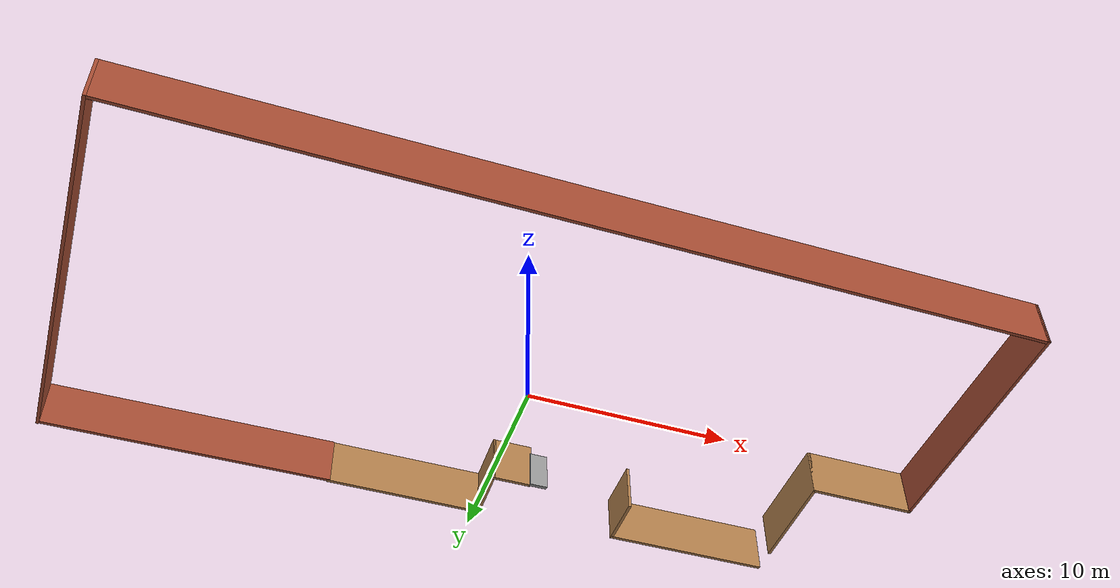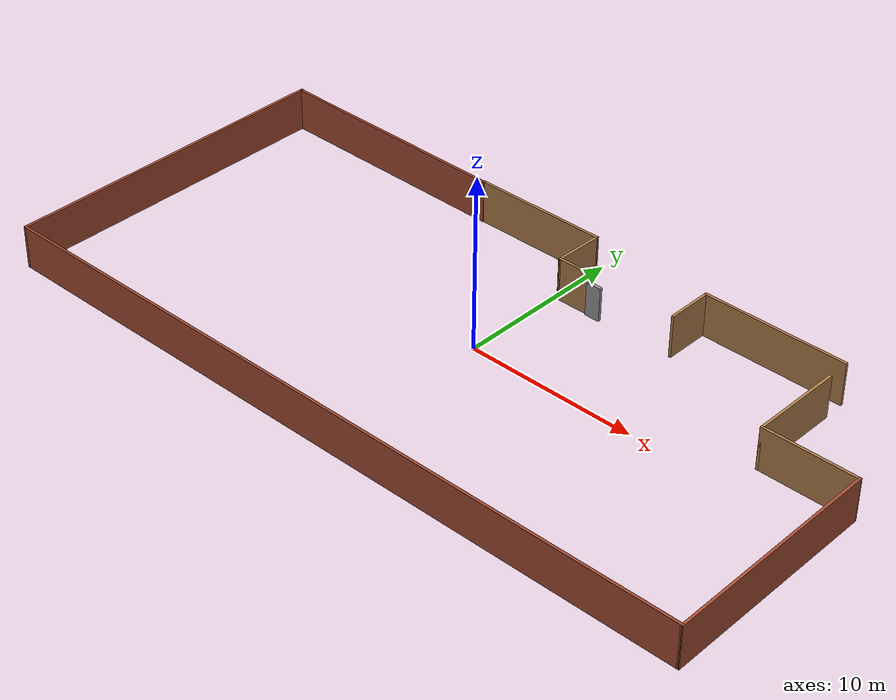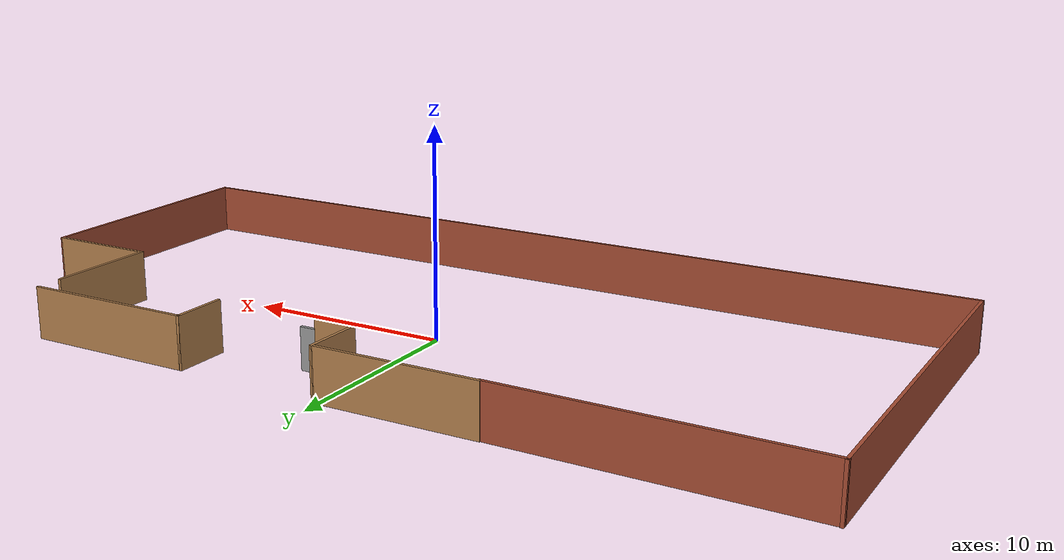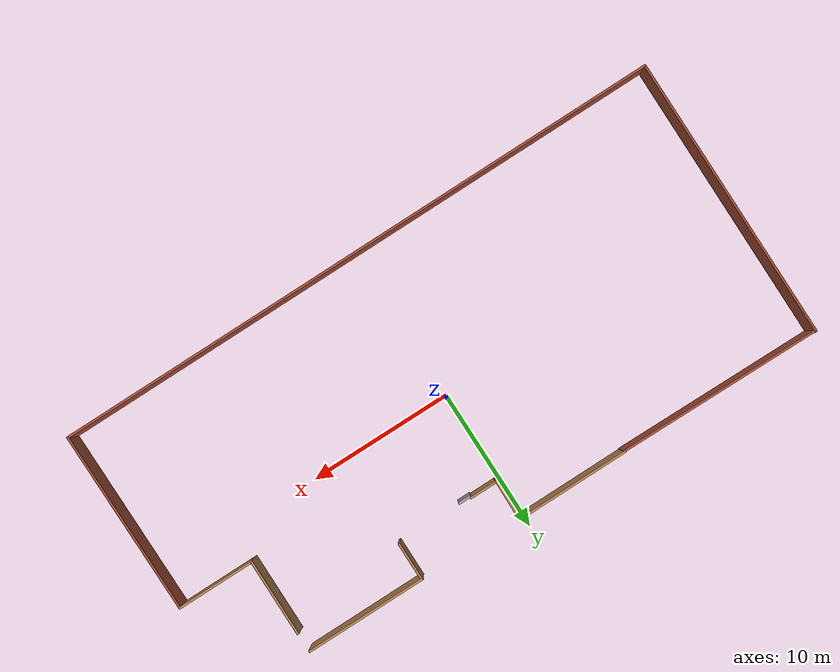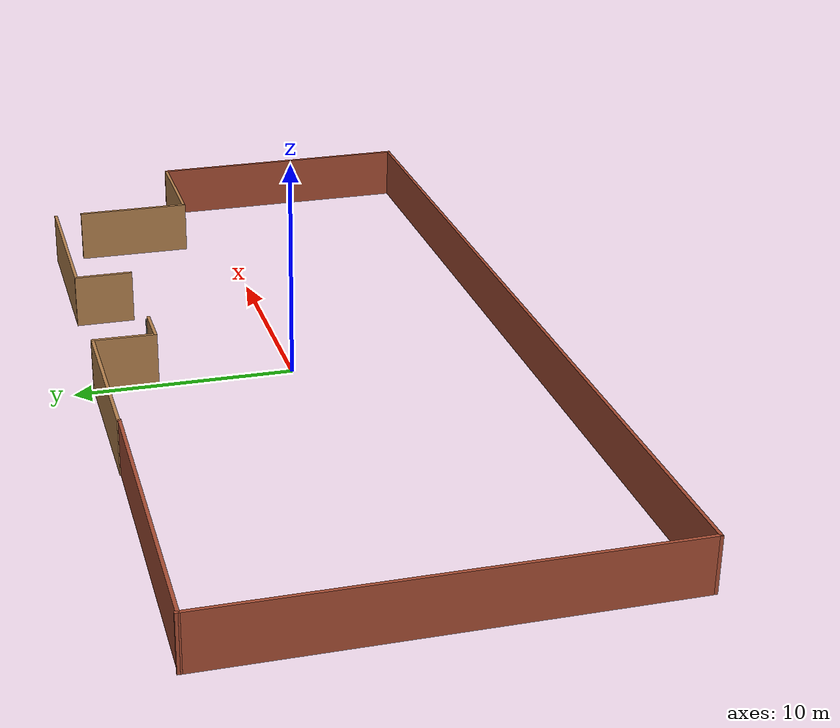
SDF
<?xml version='1.0'?>
<sdf version='1.7'>
  <model name='MKS_1'>
    <pose>-0.211875 -0.784616 0 0 -0 0</pose>
    <link name='Door_0'>
      <collision name='Door_0_Collision'>
        <geometry>
          <box>
            <size>0.9 0.17 2</size>
          </box>
        </geometry>
        <pose>0 0 1 0 -0 0</pose>
      </collision>
      <visual name='Door_0_Visual'>
        <pose>0 0 1 0 -0 0</pose>
        <geometry>
          <box>
            <size>0.9 0.17 2</size>
          </box>
        </geometry>
        <material>
          <script>
            <uri>file://media/materials/scripts/gazebo.material</uri>
            <name>Gazebo/Grey</name>
          </script>
        </material>
      </visual>
      <pose>2.75193 6.92489 0 0 -0 0</pose>
    </link>
    <link name='Wall_13'>
      <collision name='Wall_13_Collision'>
        <geometry>
          <box>
            <size>8.00014 0.15 2.5</size>
          </box>
        </geometry>
        <pose>0 0 1.25 0 -0 0</pose>
      </collision>
      <visual name='Wall_13_Visual'>
        <pose>0 0 1.25 0 -0 0</pose>
        <geometry>
          <box>
            <size>8.00014 0.15 2.5</size>
          </box>
        </geometry>
        <material>
          <script>
            <uri>file://media/materials/scripts/gazebo.material</uri>
            <name>Gazebo/Wood</name>
          </script>
          <ambient>1 1 1 1</ambient>
        </material>
        <meta>
          <layer>0</layer>
        </meta>
      </visual>
      <pose>-3.44481 9.79409 0 0 -0 0</pose>
    </link>
    <link name='Wall_14'>
      <collision name='Wall_14_Collision'>
        <geometry>
          <box>
            <size>2.9474 0.15 2.5</size>
          </box>
        </geometry>
        <pose>0 0 1.25 0 -0 0</pose>
      </collision>
      <visual name='Wall_14_Visual'>
        <pose>0 0 1.25 0 -0 0</pose>
        <geometry>
          <box>
            <size>2.9474 0.15 2.5</size>
          </box>
        </geometry>
        <material>
          <script>
            <uri>file://media/materials/scripts/gazebo.material</uri>
            <name>Gazebo/Wood</name>
          </script>
          <ambient>1 1 1 1</ambient>
        </material>
        <meta>
          <layer>0</layer>
        </meta>
      </visual>
      <pose>0.453887 8.39539 0 0 -0 -1.5896</pose>
    </link>
    <link name='Wall_16'>
      <collision name='Wall_16_Collision'>
        <geometry>
          <box>
            <size>2 0.15 2.5</size>
          </box>
        </geometry>
        <pose>0 0 1.25 0 -0 0</pose>
      </collision>
      <visual name='Wall_16_Visual'>
        <pose>0 0 1.25 0 -0 0</pose>
        <geometry>
          <box>
            <size>2 0.15 2.5</size>
          </box>
        </geometry>
        <material>
          <script>
            <uri>file://media/materials/scripts/gazebo.material</uri>
            <name>Gazebo/Wood</name>
          </script>
          <ambient>1 1 1 1</ambient>
        </material>
        <meta>
          <layer>0</layer>
        </meta>
      </visual>
      <pose>1.37889 6.99669 0 0 -0 0</pose>
    </link>
    <link name='Wall_18'>
      <collision name='Wall_18_Collision'>
        <geometry>
          <box>
            <size>2.75 0.15 2.5</size>
          </box>
        </geometry>
        <pose>0 0 1.25 0 -0 0</pose>
      </collision>
      <visual name='Wall_18_Visual'>
        <pose>0 0 1.25 0 -0 0</pose>
        <geometry>
          <box>
            <size>2.75 0.15 2.5</size>
          </box>
        </geometry>
        <material>
          <script>
            <uri>file://media/materials/scripts/gazebo.material</uri>
            <name>Gazebo/Wood</name>
          </script>
          <ambient>1 1 1 1</ambient>
        </material>
        <meta>
          <layer>0</layer>
        </meta>
      </visual>
      <pose>7.69968 8.31867 0 0 -0 1.5708</pose>
    </link>
    <link name='Wall_19'>
      <collision name='Wall_19_Collision'>
        <geometry>
          <box>
            <size>8.5 0.15 2.5</size>
          </box>
        </geometry>
        <pose>0 0 1.25 0 -0 0</pose>
      </collision>
      <visual name='Wall_19_Visual'>
        <pose>0 0 1.25 0 -0 0</pose>
        <geometry>
          <box>
            <size>8.5 0.15 2.5</size>
          </box>
        </geometry>
        <material>
          <script>
            <uri>file://media/materials/scripts/gazebo.material</uri>
            <name>Gazebo/Wood</name>
          </script>
          <ambient>1 1 1 1</ambient>
        </material>
        <meta>
          <layer>0</layer>
        </meta>
      </visual>
      <pose>11.8747 9.61867 0 0 -0 0</pose>
    </link>
    <link name='Wall_21'>
      <collision name='Wall_21_Collision'>
        <geometry>
          <box>
            <size>5.5 0.15 2.5</size>
          </box>
        </geometry>
        <pose>0 0 1.25 0 -0 0</pose>
      </collision>
      <visual name='Wall_21_Visual'>
        <pose>0 0 1.25 0 -0 0</pose>
        <geometry>
          <box>
            <size>5.5 0.15 2.5</size>
          </box>
        </geometry>
        <material>
          <script>
            <uri>file://media/materials/scripts/gazebo.material</uri>
            <name>Gazebo/Wood</name>
          </script>
          <ambient>1 1 1 1</ambient>
        </material>
        <meta>
          <layer>0</layer>
        </meta>
      </visual>
      <pose>16.0973 5.58141 0 0 -0 -1.5708</pose>
    </link>
    <link name='Wall_22'>
      <collision name='Wall_22_Collision'>
        <geometry>
          <box>
            <size>5.5 0.15 2.5</size>
          </box>
        </geometry>
        <pose>0 0 1.25 0 -0 0</pose>
      </collision>
      <visual name='Wall_22_Visual'>
        <pose>0 0 1.25 0 -0 0</pose>
        <geometry>
          <box>
            <size>5.5 0.15 2.5</size>
          </box>
        </geometry>
        <material>
          <script>
            <uri>file://media/materials/scripts/gazebo.material</uri>
            <name>Gazebo/Wood</name>
          </script>
          <ambient>1 1 1 1</ambient>
        </material>
        <meta>
          <layer>0</layer>
        </meta>
      </visual>
      <pose>18.7723 2.90641 0 0 -0 0</pose>
    </link>
    <link name='Wall_23'>
      <collision name='Wall_23_Collision'>
        <geometry>
          <box>
            <size>12.9817 0.15 2.5</size>
          </box>
        </geometry>
        <pose>0 0 1.25 0 -0 0</pose>
      </collision>
      <visual name='Wall_23_Visual'>
        <pose>0 0 1.25 0 -0 0</pose>
        <geometry>
          <box>
            <size>12.9817 0.15 2.5</size>
          </box>
        </geometry>
        <material>
          <script>
            <uri>file://media/materials/scripts/gazebo.material</uri>
            <name>Gazebo/Bricks</name>
          </script>
          <ambient>1 1 1 1</ambient>
        </material>
        <meta>
          <layer>0</layer>
        </meta>
      </visual>
      <pose>21.5102 -3.50911 0 0 -0 -1.561</pose>
    </link>
    <link name='Wall_24'>
      <collision name='Wall_24_Collision'>
        <geometry>
          <box>
            <size>43.25 0.15 2.5</size>
          </box>
        </geometry>
        <pose>0 0 1.25 0 -0 0</pose>
      </collision>
      <visual name='Wall_24_Visual'>
        <pose>0 0 1.25 0 -0 0</pose>
        <geometry>
          <box>
            <size>43.25 0.15 2.5</size>
          </box>
        </geometry>
        <material>
          <script>
            <uri>file://media/materials/scripts/gazebo.material</uri>
            <name>Gazebo/Bricks</name>
          </script>
          <ambient>1 1 1 1</ambient>
        </material>
        <meta>
          <layer>0</layer>
        </meta>
      </visual>
      <pose>-0.02302 -9.92464 0 0 -0 3.14159</pose>
    </link>
    <link name='Wall_26'>
      <collision name='Wall_26_Collision'>
        <geometry>
          <box>
            <size>20 0.15 2.5</size>
          </box>
        </geometry>
        <pose>0 0 1.25 0 -0 0</pose>
      </collision>
      <visual name='Wall_26_Visual'>
        <pose>0 0 1.25 0 -0 0</pose>
        <geometry>
          <box>
            <size>20 0.15 2.5</size>
          </box>
        </geometry>
        <material>
          <script>
            <uri>file://media/materials/scripts/gazebo.material</uri>
            <name>Gazebo/Bricks</name>
          </script>
          <ambient>1 1 1 1</ambient>
        </material>
        <meta>
          <layer>0</layer>
        </meta>
      </visual>
      <pose>-21.573 0.000365 0 0 -0 1.5708</pose>
    </link>
    <link name='Wall_27'>
      <collision name='Wall_27_Collision'>
        <geometry>
          <box>
            <size>14.3538 0.15 2.5</size>
          </box>
        </geometry>
        <pose>0 0 1.25 0 -0 0</pose>
      </collision>
      <visual name='Wall_27_Visual'>
        <pose>0 0 1.25 0 -0 0</pose>
        <geometry>
          <box>
            <size>14.3538 0.15 2.5</size>
          </box>
        </geometry>
        <material>
          <script>
            <uri>file://media/materials/scripts/gazebo.material</uri>
            <name>Gazebo/Bricks</name>
          </script>
          <ambient>1 1 1 1</ambient>
        </material>
        <meta>
          <layer>0</layer>
        </meta>
      </visual>
      <pose>-14.4714 9.81373 0 0 -0 -0.009242</pose>
    </link>
    <static>1</static>
  </model>
</sdf>
